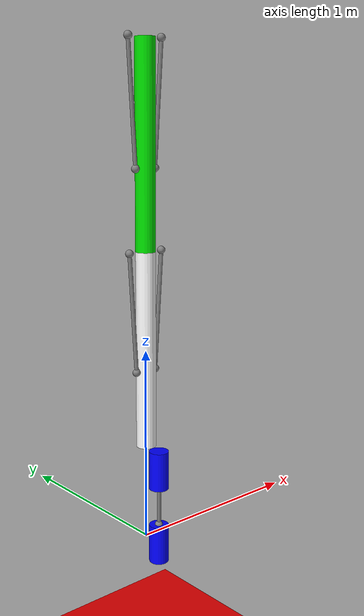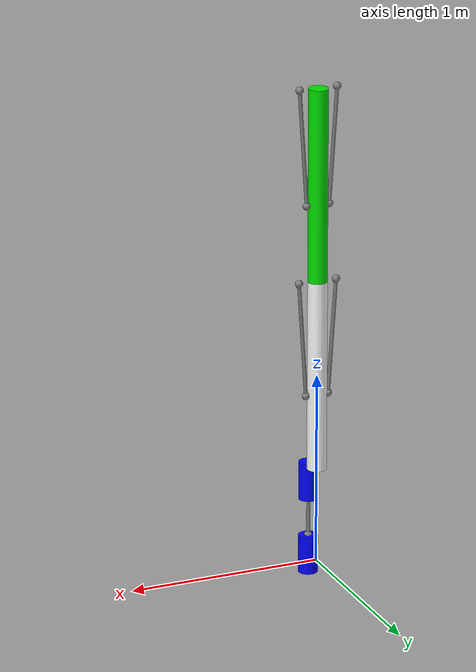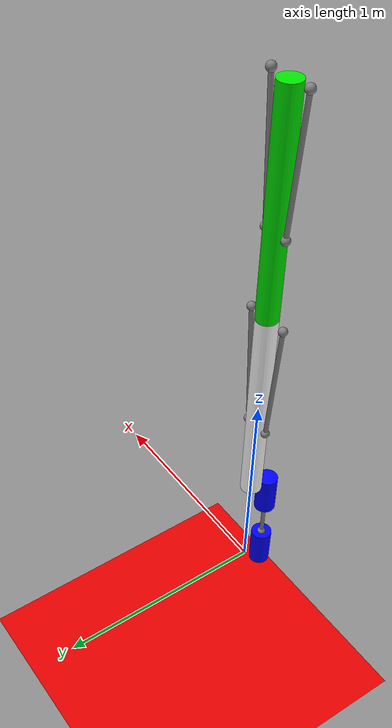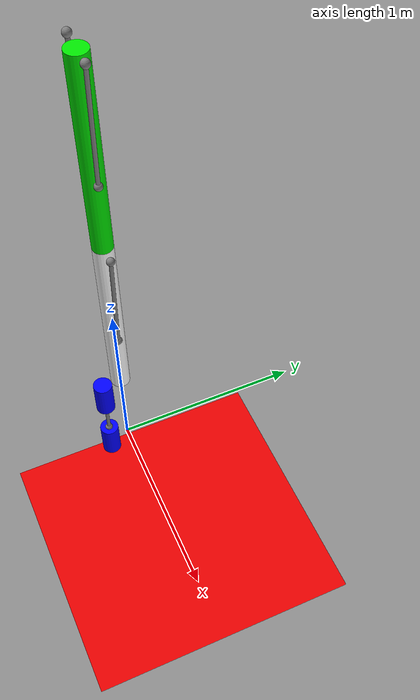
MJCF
<mujoco>
    <!-- min distance from root to endfactor is 1.766, max is 2 -->
    <option timestep="0.005">
		<flag gravity="enable"/>
    </option>
    <size nuserdata="3"/>
    <worldbody>
        <light diffuse=".5 .5 .5" pos="0 0 3" dir="0 0 -1"/>
        <geom type="plane" pos="0 0 -1" size="1 1 0.1" rgba=".9 0 0 1"/>

        <site name="s0" pos="0.1 0 2.5" size="0.02"/>
        <site name="s2" pos="-0.1 0 2.5" size="0.02"/>
        <body pos="0 0 1.5" euler="0 0 0">
            <joint name="joint0" type="hinge" axis="0 -1 0" pos="0 0 1" damping="0.001" limited="true" range="-56 56"/>
            <geom name="link0" type="cylinder" pos="0 0 0.5" size="0.05 .5" rgba="0 .9 0 1" mass="1"/>
            <site name="s1" pos="0.06 0 0.4" size="0.02"/>
            <site name="s3" pos="-0.06 0 0.4" size="0.02"/>
            <site name="s4" pos="0.1 0 0" size="0.02"/>
            <site name="s5" pos="-0.1 0 0" size="0.02"/>
            <body pos="0 0 -1" euler="0 0 0">
                <joint name="joint1" type="hinge" axis="0 -1 0" pos="0 0 1" damping="0.001" limited="true" range="-56 56"/>
                <geom name="link1" pos="0 0 0.5" type="cylinder" size="0.05 .5" rgba="1 1 1 1" mass="1"/>
                <site name="s6" pos="0.06 0 0.4" size="0.02"/>
                <site name="s7" pos="-0.06 0 0.4" size="0.02"/>
                <body pos="0 -0.1 -0.1" euler="0 0 0">
                    <joint name="joint2" type="hinge" axis="0 -1 0" pos="0 0 0.1" damping="0"/>
                    <geom name="link2_1" pos="0 0 0" type="cylinder" size="0.05 .1" rgba="0 0 1 1" mass="1"/>
                    <site name="top" pos="0 0 -0.1" size="0.02"/>
                    <body pos="0 0 -0.4" euler="0 0 0">
                        <joint name="slide joint" type="slide" axis="0 0 -1" limited="true" range="-0.2 0.3"/>
                        <geom name="link2_2" pos="0 0 0" type="cylinder" size="0.05 .1" rgba="0 0 1 1" mass="1"/>
                        <site name="bottom" pos="0 0 0.1" size="0.02"/>
                    </body>
                </body>
            </body>
        </body>
    </worldbody>
    <tendon>
        <spatial name="r-tendon" width="0.01">
            <site site="s0"/>
            <site site="s1"/>
        </spatial>
    </tendon>
    <tendon>
        <spatial name="l-tendon" width="0.01">
            <site site="s2"/>
            <site site="s3"/>
        </spatial>
    </tendon>
    <tendon>
        <spatial name="r-middle" width="0.01">
            <site site="s4"/>
            <site site="s6"/>
        </spatial>
    </tendon>
    <tendon>
        <spatial name="l-middle" width="0.01">
            <site site="s5"/>
            <site site="s7"/>
        </spatial>
    </tendon>
    <tendon>
        <spatial name="spring" width="0.01" springlength="0.25" stiffness="100" damping="2">
            <site site="top"/>
            <site site="bottom"/>
        </spatial>
    </tendon>
    <actuator>
        <muscle  name="r-muscle" tendon="r-tendon" range="0.75 1.15" scale="400"/>
        <muscle  name="l-muscle" tendon="l-tendon" range="0.75 1.15" scale="400"/>
        <muscle  name="r-ctrl" tendon="r-middle" range="0.75 1.15" scale="400"/>
        <muscle  name="l-ctrl" tendon="l-middle" range="0.75 1.15" scale="400"/>
    </actuator>
</mujoco>
